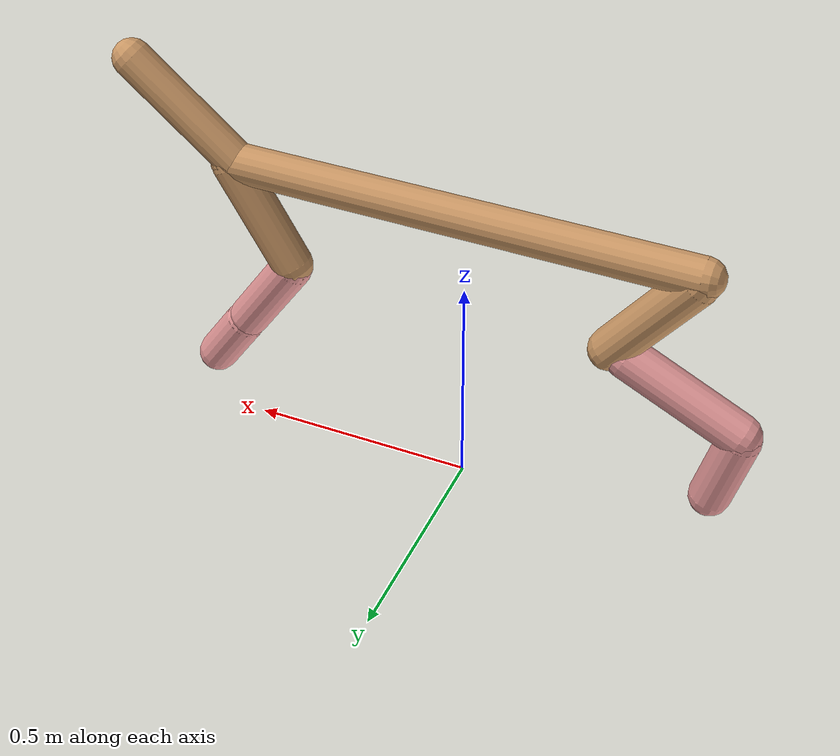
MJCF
<mujoco model="cheetah">
  <compiler angle="radian" coordinate="local" inertiafromgeom="true" settotalmass="14" />
  <default>
    <joint armature=".1" damping=".01" limited="true" solimplimit="0 .8 .03" solreflimit=".02 1" stiffness="8" />
    <geom conaffinity="0" condim="3" contype="1" friction="0.8 .1 .1" rgba="0.8 0.6 .4 1" solimp="0.0 0.8 0.01" solref="0.02 1" />
    <motor ctrllimited="true" ctrlrange="-1 1" />
  </default>
  <size nstack="300000" nuser_geom="1" />
  <option gravity="0 0 -9.81" timestep="0.01" />
  <worldbody>
    <body name="torso" pos="0.0 0.0 0.6841151342252614">
      <joint armature="0" axis="1 0 0" damping="0" limited="false" name="ignorex" pos="0 0 0" stiffness="0" type="slide" />
      <joint armature="0" axis="0 0 1" damping="0" limited="false" name="ignorez" pos="0 0 0" stiffness="0" type="slide" />
      <joint armature="0" axis="0 1 0" damping="0" limited="false" name="ignorey" pos="0 0 0" stiffness="0" type="hinge" />
      <geom fromto="-0.5 0.0 0.0 0.5351192306280361 0.0 0.0" name="torso" size="0.043088528436008244" type="capsule" />
      <geom axisangle="0 1 0 .87" name="head" pos="0.6351192306280361 0.0 0.1" size="0.04265900816574043 0.15" type="capsule" />

      <body name="bthigh" pos="-.5 0 0">
        <joint axis="0 1 0" damping="6" name="bthigh" pos="0 0 0" range="-.52 1.05" stiffness="240" type="hinge" />
        <geom axisangle="0 1 0 -3.8" name="bthigh" pos="0.0954098208971733 0.0 -0.12403276716632529" size="0.04623166289660986 0.13747154651423596" type="capsule" />
        <body name="bshin" pos="0.1508196417943466 0.0 -0.23806553433265057">
          <joint axis="0 1 0" damping="4.5" name="bshin" pos="0 0 0" range="-.785 .785" stiffness="180" type="hinge" />
          <geom axisangle="0 1 0 -2.03" name="bshin" pos="-0.13303415154774612 0.0 -0.06651707577387306" rgba="0.9 0.6 0.6 1" size="0.04623166289660986 0.14221194466989928" type="capsule" />
          <body name="bfoot" pos="-0.26606830309549223 0.0 -0.13303415154774612">
            <joint axis="0 1 0" damping="3" name="bfoot" pos="0 0 0" range="-.4 .785" stiffness="120" type="hinge" />
            <geom axisangle="0 1 0 -.27" name="bfoot" pos="0.02855795568169507 0.0 -0.09233739003748073" rgba="0.9 0.6 0.6 1" size="0.04623166289660986 0.08911948532647022" type="capsule" />
            <inertial mass="10" />
          </body>
        </body>
      </body>
      <body name="fthigh" pos="0.5351192306280361 0.0 0.0">
        <joint axis="0 1 0" damping="4.5" name="fthigh" pos="0 0 0" range="-1.5 0.8" stiffness="180" type="hinge" />
        <geom axisangle="0 1 0 .52" name="fthigh" pos="-0.0688864834310726 0.0 -0.11809111445326732" size="0.04491800166748326 0.13079007620497884" type="capsule" />
        <body name="fshin" pos="-0.1377729668621452 0.0 -0.23618222890653465">
          <joint axis="0 1 0" damping="3" name="fshin" pos="0 0 0" range="-1.2 1.1" stiffness="120" type="hinge" />
          <geom axisangle="0 1 0 -.6" name="fshin" pos="0.06396877979165203 0.0 -0.0885721566345951" rgba="0.9 0.6 0.6 1" size="0.04491800166748326 0.10423870735133652" type="capsule" />
          <body name="ffoot" pos="0.12793755958330405 0.0 -0.1771443132691902">
            <joint axis="0 1 0" damping="1.5" name="ffoot" pos="0 0 0" range="-3.1 -0.3" stiffness="60" type="hinge" />
            <geom axisangle="0 1 0 -.6" name="ffoot" pos="0.04437103522716735 0.0 -0.06902161035337144" rgba="0.9 0.6 0.6 1" size="0.04491800166748326 0.06883688221314677" type="capsule" />
            <inertial mass="10" />
          </body>
        </body>
      </body>
    </body>
  </worldbody>
  <actuator>
    <motor gear="120" joint="bthigh" name="bthigh" />
    <motor gear="90" joint="bshin" name="bshin" />
    <motor gear="60" joint="bfoot" name="bfoot" />
    <motor gear="120" joint="fthigh" name="fthigh" />
    <motor gear="60" joint="fshin" name="fshin" />
    <motor gear="30" joint="ffoot" name="ffoot" />
  </actuator>
</mujoco>
